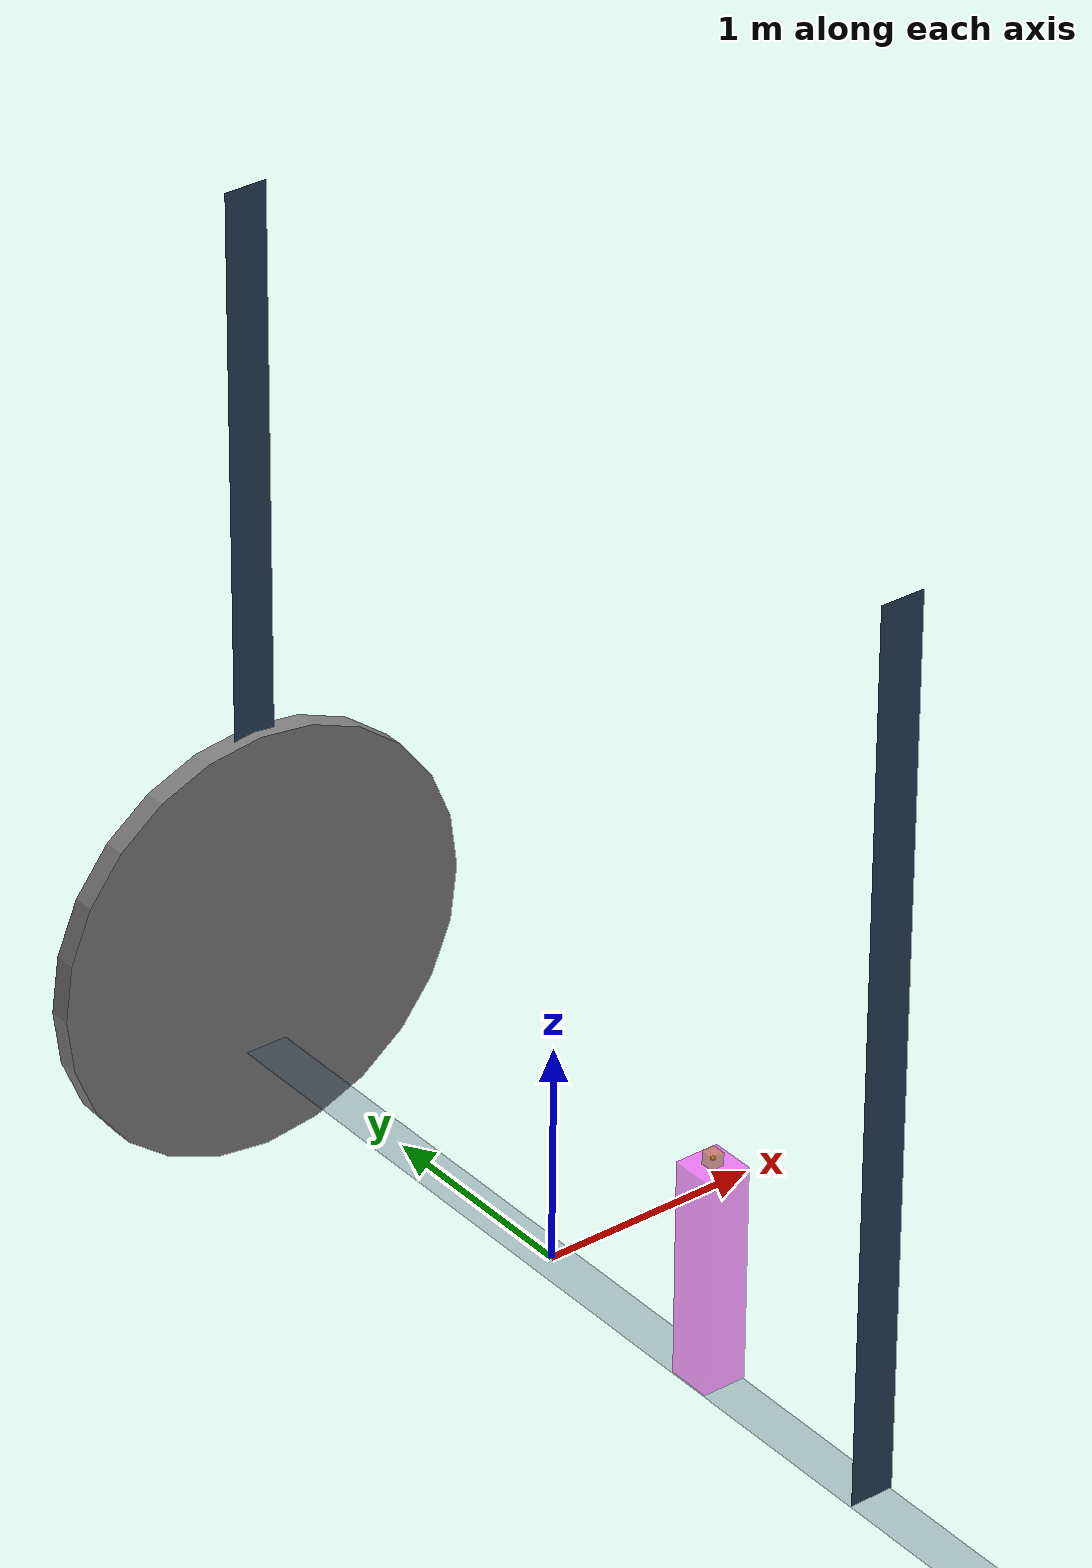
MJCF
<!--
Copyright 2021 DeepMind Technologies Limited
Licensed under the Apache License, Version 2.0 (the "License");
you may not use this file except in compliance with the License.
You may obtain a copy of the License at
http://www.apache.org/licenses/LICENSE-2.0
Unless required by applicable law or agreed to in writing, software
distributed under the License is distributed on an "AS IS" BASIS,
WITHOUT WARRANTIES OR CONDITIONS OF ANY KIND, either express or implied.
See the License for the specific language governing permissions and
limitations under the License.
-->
<mujoco model="Baseball pitch">
  <visual>
    <map force="0.1" zfar="30"/>
    <rgba haze="0.15 0.25 0.35 1"/>
      <!--offwidth="2560" offheight="1440"-->
    <global
      elevation="20"
      azimuth="10"
      />
    <headlight ambient=".8 .8 .8" specular=".8 .8 .8"/>
  </visual>

  <statistic center="0 0 0.7"/>
  <default>
    <geom solimp="0.5 0.99 0.001" solref="0.01 1"/>
  </default>

  <asset>
    <texture type="skybox" builtin="gradient" rgb1=".3 .5 .7" rgb2="0 0 0"
      width="32" height="512"/>
    <texture name="grid" type="2d" builtin="checker" width="512" height="512"
      rgb1=".1 .2 .3" rgb2=".2 .3 .4"/>
    <material name="grid" texture="grid" texrepeat="1 1" texuniform="true"
      reflectance=".2"/>
    <texture name="obj" type="cube" builtin="flat" mark="cross" width="128"
      height="128" rgb1="0.8 0.6 0.4" rgb2="0.8 0.6 0.4" markrgb="1 1 1"
      random="0.01"/>
    <material name="obj" texture="obj" texuniform="true" rgba="0.8 0.6 .4 1"/>
  </asset>

  <worldbody>
    <geom name="floor" size=".1 3 .05" type="plane" material="grid"
      condim="3"/>
    <body name="wall" pos="0 0 0" xyaxes="1 0 0 0 0 1">
      <geom name="rwall2" pos = "0 2 -2" size=".1 2 .05" type="plane"
        material="grid" condim="3"/>
    </body>
    <body name="lwall" pos="0 0 0" xyaxes="-1 0 0 0 0 1">
      <geom name="lwall2" pos = "0 2 -2" size=".1 2 .05" type="plane"
        material="grid" condim="3"/>
    </body>
    <body name="ceil" pos="0 0 0" xyaxes="-1 0 0 0 1 0">
      <geom name="ceil2" pos = "0 0 -3" size=".1 2 .05" type="plane"
        material="grid" condim="3"/>
    </body>
    <camera name="forward" pos="9 0 0" xyaxes="0 1 0 0 0 1"/>

    <geom name="ballstand" size=".1 .1 .5" pos="0 -1.0 .5" type="box"
      material="obj" condim="3" rgba = "1 0 1 .5"/>

    <body name="ball" pos="0 -1.0 1.03">
      <freejoint name="ball_joint" align="true"/>
      <geom name="ball" size=".03 .03 .03" pos="0 0 0" type="box"
        material="obj" condim="3" friction="1 0.005 0.0001"
        rgba=".7 0 0 .5" density="800"/>
      <site name="ball_base" pos="0 0 -.03" size=".01" rgba=".7 .7 .2 0"/>
      <site name="ball" pos="0 0 0" rgba=".7 .7 .2 .0"/>
      <site name="ball_top" pos="0 0 0.03" rgba=".7 .7 .2 0" size=".02"/>
      <body name="ball_core" pos="0 0 0">
        <geom name="ball_core" size=".01" pos="0 0 0" type="sphere"
          material="obj" condim="3" density="1" rgba="1 1 0 1"/>
      </body>
    </body>

    <body name="target" pos="0 2 .5">
      <geom name="target" type="cylinder" pos="0 0 0" size="1 .05"
        zaxis="0 1 0"/>
      <site name="bullseye" pos="0 -.05 0" size="0.06" rgba="1 1 1 0"/>
    </body>

  </worldbody>
</mujoco>
